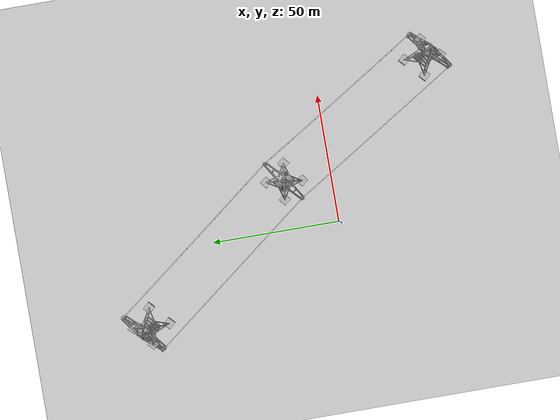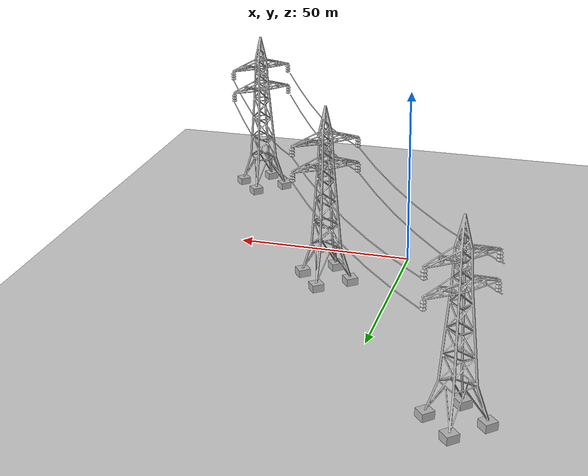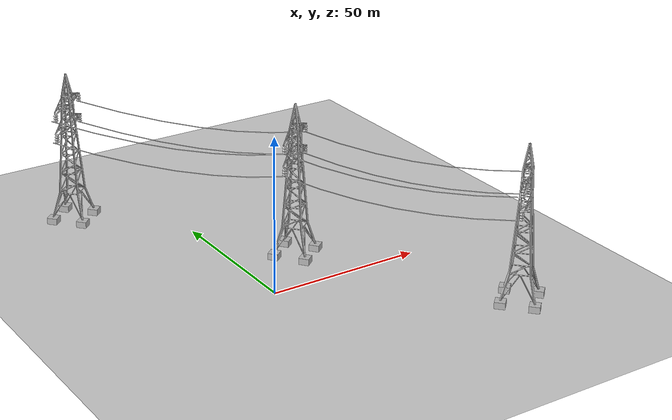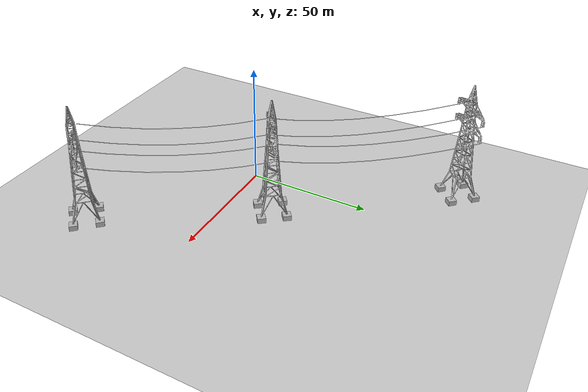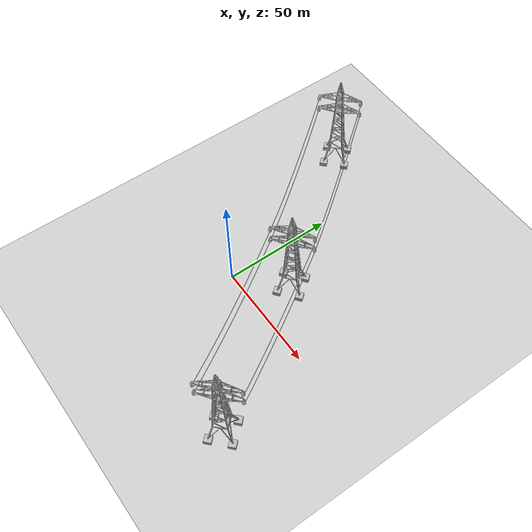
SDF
<sdf version="1.6">
 <world name="default">
  <light name="sun" type="directional">
   <pose>0 0 10 0 -0 0</pose>
   <diffuse>0.8 0.8 0.8 1</diffuse>
   <specular>0.2 0.2 0.2 1</specular>
   <attenuation>
    <range>1000</range>
    <constant>0.9</constant>
    <linear>0.01</linear>
    <quadratic>0.001</quadratic>
   </attenuation>
   <direction>-0.5 0.1 -0.9</direction>
  </light>
  <model name="ground_plane">
   <static>1</static>
   <link name="link">
    <collision name="collision">
     <geometry><plane><normal>0 0 1</normal><size>100 100</size></plane></geometry>
     <surface>
      <contact><collide_bitmask>65535</collide_bitmask></contact>
      <friction><ode><mu>100</mu><mu2>50</mu2></ode></friction>
     </surface>
    </collision>
    <visual name="visual">
     <cast_shadows>0</cast_shadows>
     <geometry><plane><normal>0 0 1</normal><size>100 100</size></plane></geometry>
     <material>
      <script><uri>file://media/materials/scripts/gazebo.material</uri><name>Gazebo/Grey</name></script>
     </material>
    </visual>
   </link>
  </model>
  <gravity>0 0 -9.8</gravity>
  <magnetic_field>6e-06 2.3e-05 -4.2e-05</magnetic_field>
  <atmosphere type="adiabatic"/>
  <physics name="default_physics" default="0" type="ode">
   <max_step_size>0.001</max_step_size>
   <real_time_factor>1</real_time_factor>
   <real_time_update_rate>1000</real_time_update_rate>
  </physics>
  <scene><ambient>0.4 0.4 0.4 1</ambient><background>0.7 0.7 0.7 1</background><shadows>1</shadows></scene>
  <audio><device>default</device></audio>
  <spherical_coordinates>
   <surface_model>EARTH_WGS84</surface_model>
   <latitude_deg>0</latitude_deg>
   <longitude_deg>0</longitude_deg>
   <elevation>0</elevation>
   <heading_deg>0</heading_deg>
  </spherical_coordinates>
  <model name="PowerPylons">
   <link name="link">
    <inertial>
     <pose>0 0 0.0175 0 -0 0</pose>
     <mass>0.1</mass>
     <inertia>
      <ixx>0.000250308</ixx>
      <ixy>0</ixy>
      <ixz>0</ixz>
      <iyy>0.000250308</iyy>
      <iyz>0</iyz>
      <izz>0.0004802</izz>
     </inertia>
    </inertial>
    <collision name="collision">
     <pose>0 0 0.0175 0 -0 0</pose>
     <geometry><cylinder><radius>0.098</radius><length>0.035</length></cylinder></geometry>
    </collision>
    <visual name="visual">
     <geometry><mesh><uri>model://PowerPylons/meshes/50M_towers.dae</uri></mesh></geometry>
    </visual>
   </link>
   <pose>15.3347 25.2361 0 0 0 -0.903078</pose>
  </model>
 </world>
</sdf>
